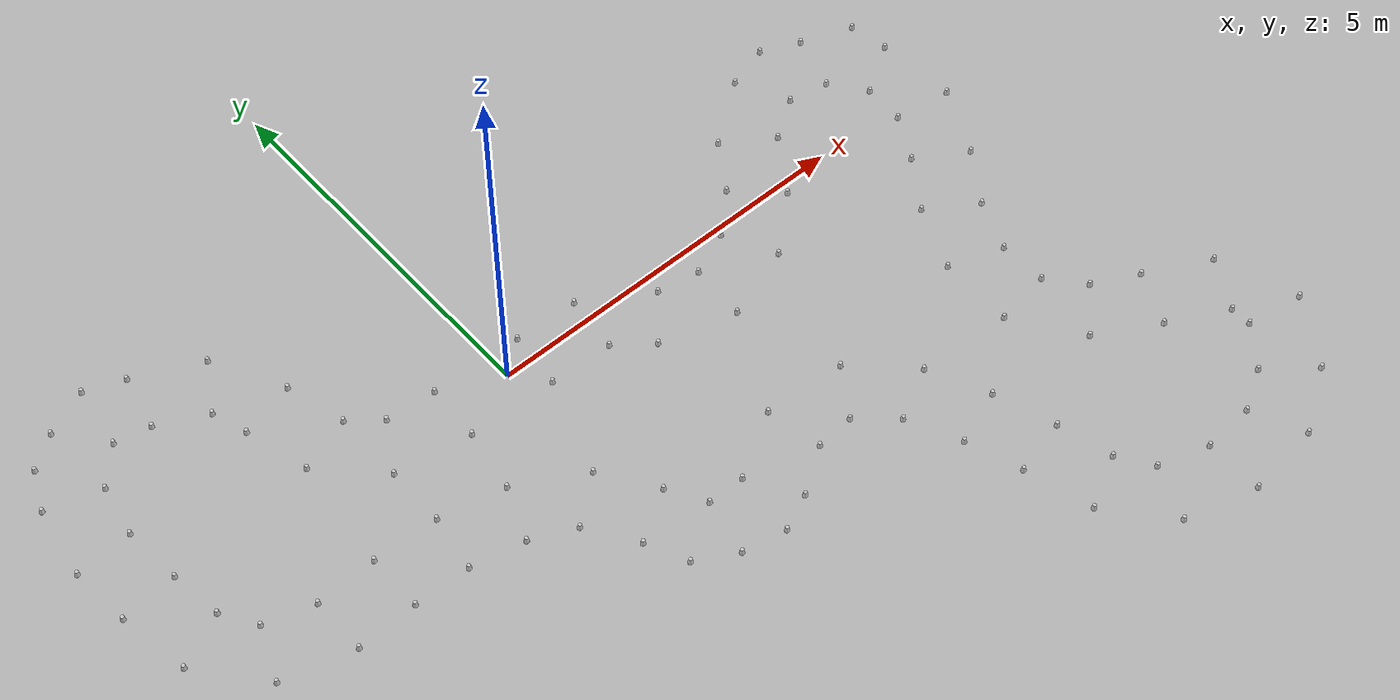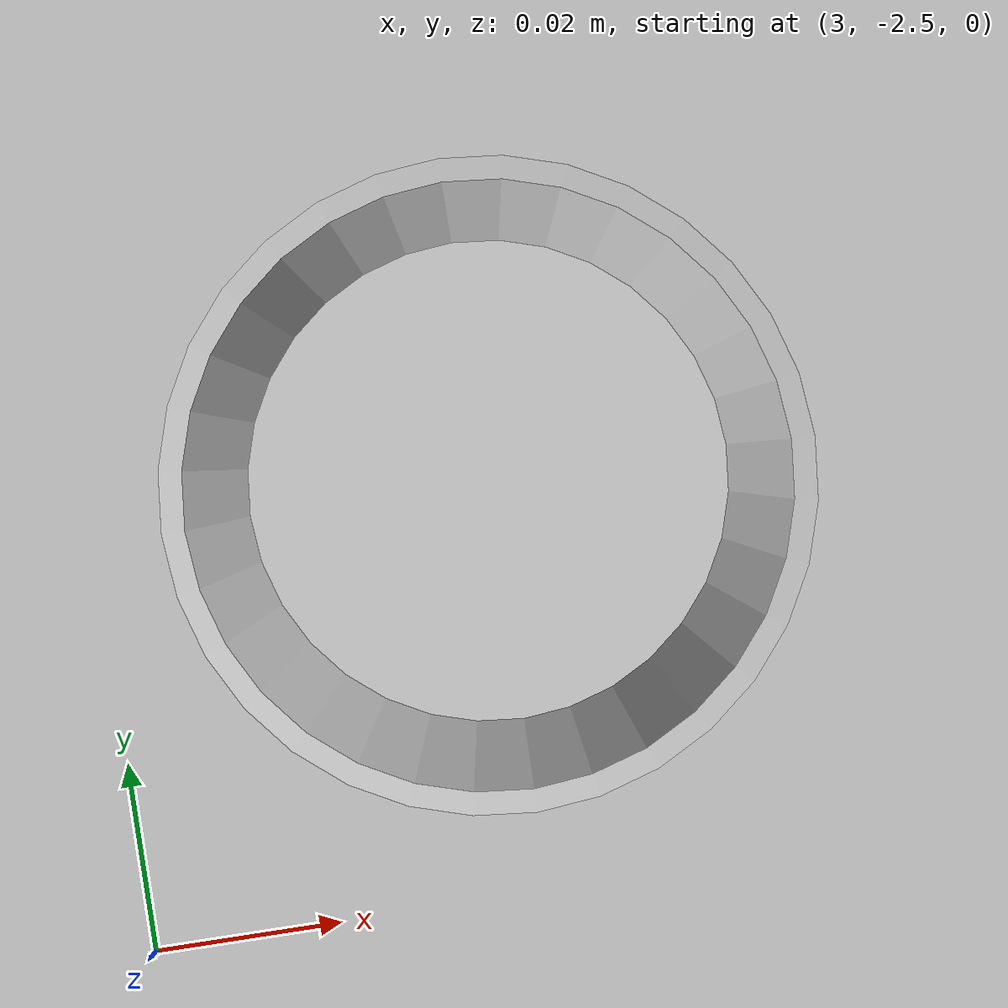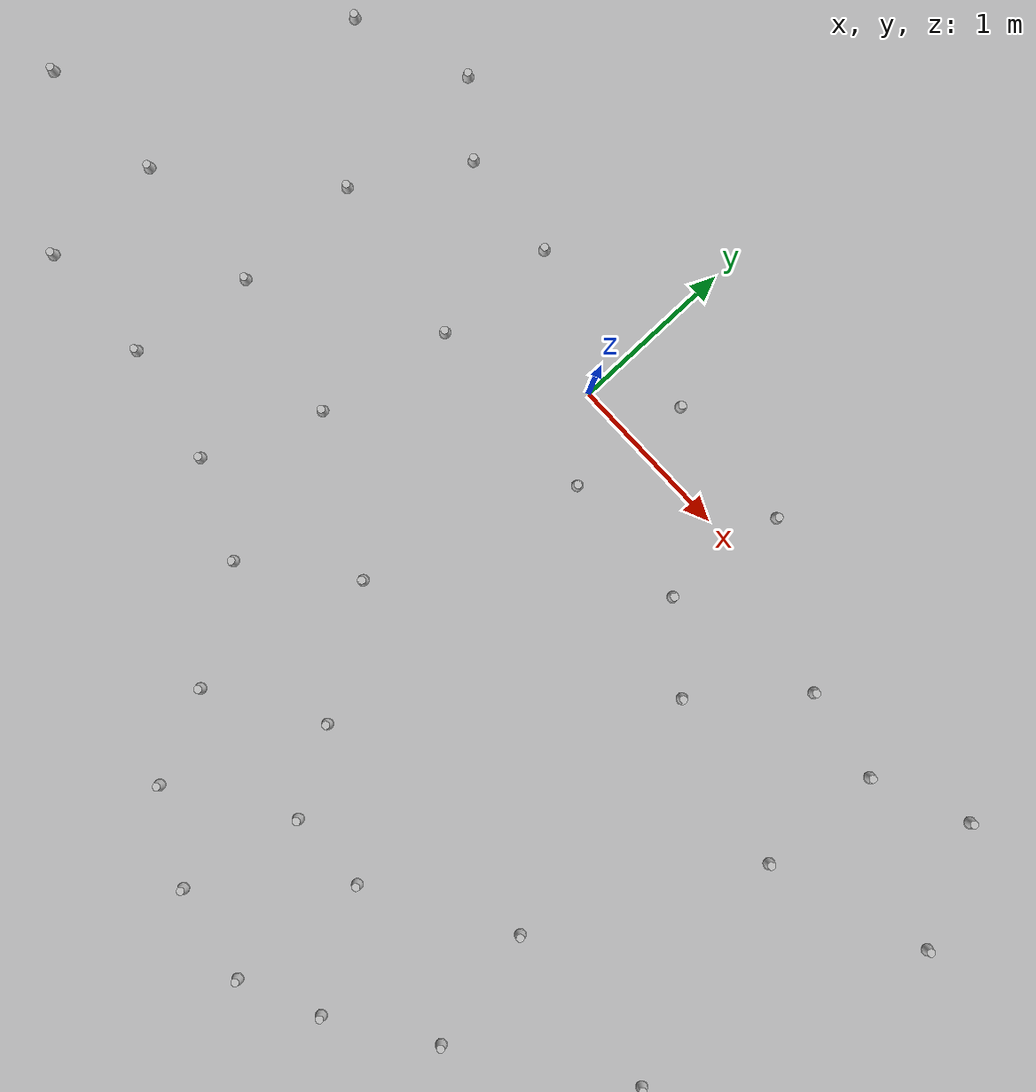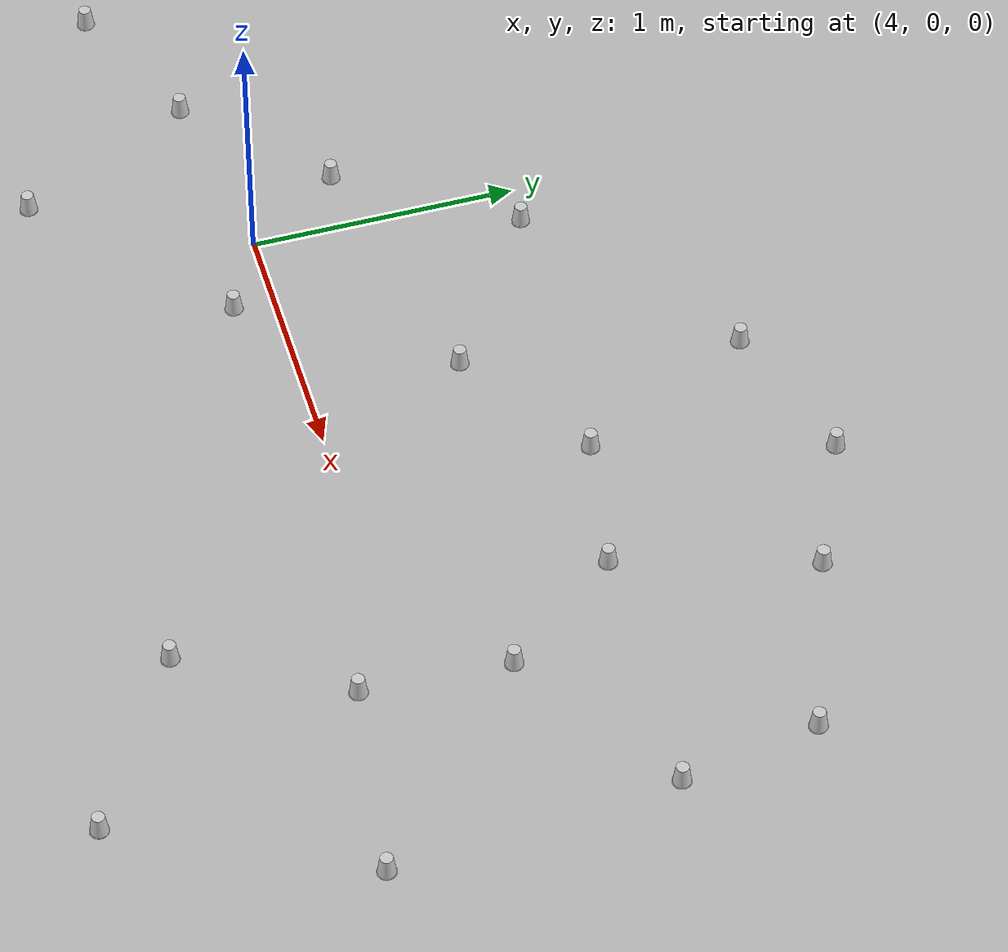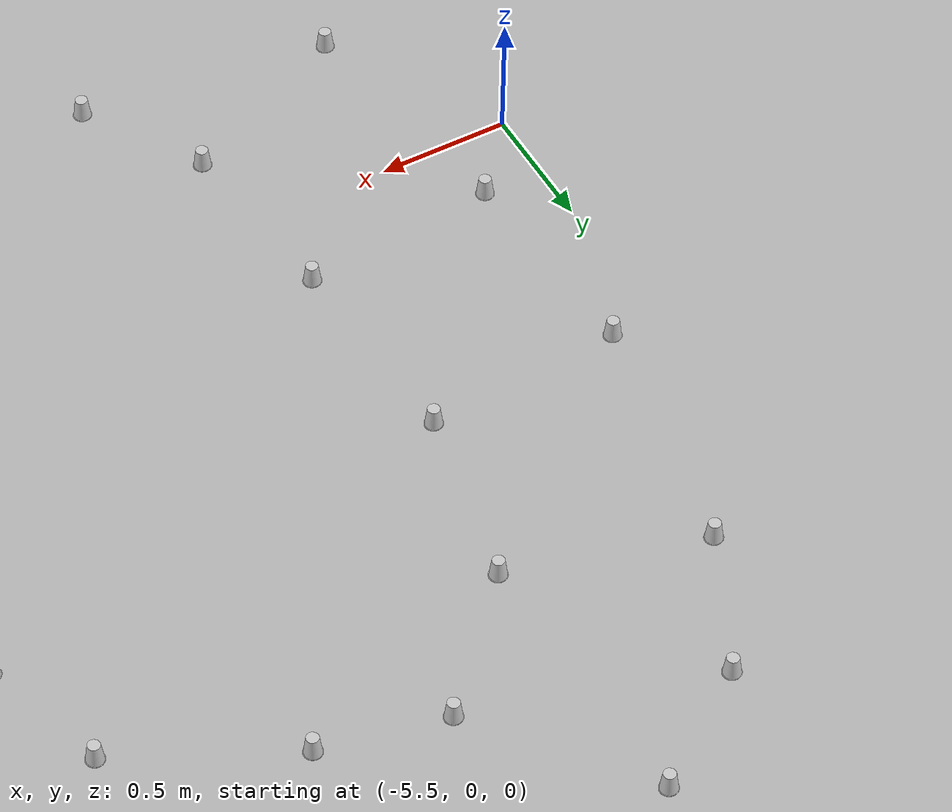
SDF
<?xml version='1.0' encoding='UTF-8'?>
<sdf version="1.4">
  <model name="some track">
    <include>
      <uri>model://cone_yellow</uri>
      <pose>0.3409676039409463 -0.41114177604470903 0 0 0 0</pose>
      <name>cone_right_0</name>
    </include>
    <include>
      <uri>model://cone_yellow</uri>
      <pose>1.1767115236807184 -0.4493838252367791 0 0 0 0</pose>
      <name>cone_right_1</name>
    </include>
    <include>
      <uri>model://cone_yellow</uri>
      <pose>1.631558370376822 -0.8078466989733224 0 0 0 0</pose>
      <name>cone_right_2</name>
    </include>
    <include>
      <uri>model://cone_yellow</uri>
      <pose>2.6372265462705076 -1.0855538326307848 0 0 0 0</pose>
      <name>cone_right_3</name>
    </include>
    <include>
      <uri>model://cone_yellow</uri>
      <pose>3.5890004089107594 -0.7654969534349234 0 0 0 0</pose>
      <name>cone_right_4</name>
    </include>
    <include>
      <uri>model://cone_yellow</uri>
      <pose>4.291666513173601 -0.15092693251580996 0 0 0 0</pose>
      <name>cone_right_5</name>
    </include>
    <include>
      <uri>model://cone_yellow</uri>
      <pose>4.782597564881496 0.5703919850985453 0 0 0 0</pose>
      <name>cone_right_6</name>
    </include>
    <include>
      <uri>model://cone_yellow</uri>
      <pose>5.2964412606022 0.9084802677498479 0 0 0 0</pose>
      <name>cone_right_7</name>
    </include>
    <include>
      <uri>model://cone_yellow</uri>
      <pose>5.819784138127884 0.8106051766948299 0 0 0 0</pose>
      <name>cone_right_8</name>
    </include>
    <include>
      <uri>model://cone_yellow</uri>
      <pose>6.156416733164633 0.3674896340894541 0 0 0 0</pose>
      <name>cone_right_9</name>
    </include>
    <include>
      <uri>model://cone_yellow</uri>
      <pose>6.128602146034341 -0.1783455778757544 0 0 0 0</pose>
      <name>cone_right_10</name>
    </include>
    <include>
      <uri>model://cone_yellow</uri>
      <pose>5.807316255386401 -0.7611340283406779 0 0 0 0</pose>
      <name>cone_right_11</name>
    </include>
    <include>
      <uri>model://cone_yellow</uri>
      <pose>5.3545018083821105 -1.4142515967132379 0 0 0 0</pose>
      <name>cone_right_12</name>
    </include>
    <include>
      <uri>model://cone_yellow</uri>
      <pose>4.998807136372666 -2.246408923662873 0 0 0 0</pose>
      <name>cone_right_13</name>
    </include>
    <include>
      <uri>model://cone_yellow</uri>
      <pose>4.983328583720128 -3.226833901873149 0 0 0 0</pose>
      <name>cone_right_14</name>
    </include>
    <include>
      <uri>model://cone_yellow</uri>
      <pose>5.565364480462757 -4.081125344238883 0 0 0 0</pose>
      <name>cone_right_15</name>
    </include>
    <include>
      <uri>model://cone_yellow</uri>
      <pose>6.363013064539919 -4.531742112849482 0 0 0 0</pose>
      <name>cone_right_16</name>
    </include>
    <include>
      <uri>model://cone_yellow</uri>
      <pose>7.123687108358626 -4.924042889566283 0 0 0 0</pose>
      <name>cone_right_17</name>
    </include>
    <include>
      <uri>model://cone_yellow</uri>
      <pose>7.127089540645765 -5.201016966559487 0 0 0 0</pose>
      <name>cone_right_18</name>
    </include>
    <include>
      <uri>model://cone_yellow</uri>
      <pose>6.712845519506844 -5.718142094779908 0 0 0 0</pose>
      <name>cone_right_19</name>
    </include>
    <include>
      <uri>model://cone_yellow</uri>
      <pose>6.190052301106951 -6.022459694572738 0 0 0 0</pose>
      <name>cone_right_20</name>
    </include>
    <include>
      <uri>model://cone_yellow</uri>
      <pose>5.506928528467959 -6.074965762808183 0 0 0 0</pose>
      <name>cone_right_21</name>
    </include>
    <include>
      <uri>model://cone_yellow</uri>
      <pose>4.847933917968942 -5.869512724893547 0 0 0 0</pose>
      <name>cone_right_22</name>
    </include>
    <include>
      <uri>model://cone_yellow</uri>
      <pose>4.559766804122246 -5.43816367083764 0 0 0 0</pose>
      <name>cone_right_23</name>
    </include>
    <include>
      <uri>model://cone_yellow</uri>
      <pose>4.376839194252488 -4.717066437962767 0 0 0 0</pose>
      <name>cone_right_24</name>
    </include>
    <include>
      <uri>model://cone_yellow</uri>
      <pose>4.112315207650622 -3.915404744489624 0 0 0 0</pose>
      <name>cone_right_25</name>
    </include>
    <include>
      <uri>model://cone_yellow</uri>
      <pose>3.7511028802787334 -3.138880577470492 0 0 0 0</pose>
      <name>cone_right_26</name>
    </include>
    <include>
      <uri>model://cone_yellow</uri>
      <pose>3.0422179326362246 -2.456496843170926 0 0 0 0</pose>
      <name>cone_right_27</name>
    </include>
    <include>
      <uri>model://cone_yellow</uri>
      <pose>1.9684291721027543 -2.3815171913766062 0 0 0 0</pose>
      <name>cone_right_28</name>
    </include>
    <include>
      <uri>model://cone_yellow</uri>
      <pose>1.138109261859287 -2.8628612971014142 0 0 0 0</pose>
      <name>cone_right_29</name>
    </include>
    <include>
      <uri>model://cone_yellow</uri>
      <pose>0.6426877544229853 -2.859744074155894 0 0 0 0</pose>
      <name>cone_right_30</name>
    </include>
    <include>
      <uri>model://cone_yellow</uri>
      <pose>0.3622621559774388 -2.3781096370189285 0 0 0 0</pose>
      <name>cone_right_31</name>
    </include>
    <include>
      <uri>model://cone_yellow</uri>
      <pose>-0.09859919944509482 -1.6765382276697358 0 0 0 0</pose>
      <name>cone_right_32</name>
    </include>
    <include>
      <uri>model://cone_yellow</uri>
      <pose>-0.9740155425092637 -1.1863236739954741 0 0 0 0</pose>
      <name>cone_right_33</name>
    </include>
    <include>
      <uri>model://cone_yellow</uri>
      <pose>-1.8416943104076664 -0.9936768916710199 0 0 0 0</pose>
      <name>cone_right_34</name>
    </include>
    <include>
      <uri>model://cone_yellow</uri>
      <pose>-2.7096669484907383 -0.9594147827962689 0 0 0 0</pose>
      <name>cone_right_35</name>
    </include>
    <include>
      <uri>model://cone_yellow</uri>
      <pose>-3.5176063277997347 -0.9838747267761377 0 0 0 0</pose>
      <name>cone_right_36</name>
    </include>
    <include>
      <uri>model://cone_yellow</uri>
      <pose>-4.164275383308855 -0.7891480094791462 0 0 0 0</pose>
      <name>cone_right_37</name>
    </include>
    <include>
      <uri>model://cone_yellow</uri>
      <pose>-4.437327596436047 -0.34918293176320836 0 0 0 0</pose>
      <name>cone_right_38</name>
    </include>
    <include>
      <uri>model://cone_yellow</uri>
      <pose>-4.5236431839745155 0.34330531409586007 0 0 0 0</pose>
      <name>cone_right_39</name>
    </include>
    <include>
      <uri>model://cone_yellow</uri>
      <pose>-4.581928101687658 1.131725442492832 0 0 0 0</pose>
      <name>cone_right_40</name>
    </include>
    <include>
      <uri>model://cone_yellow</uri>
      <pose>-4.450740080764928 1.8166034464207457 0 0 0 0</pose>
      <name>cone_right_41</name>
    </include>
    <include>
      <uri>model://cone_yellow</uri>
      <pose>-4.032388783141349 2.2585733122078775 0 0 0 0</pose>
      <name>cone_right_42</name>
    </include>
    <include>
      <uri>model://cone_yellow</uri>
      <pose>-3.5634308392080567 2.160134826423552 0 0 0 0</pose>
      <name>cone_right_43</name>
    </include>
    <include>
      <uri>model://cone_yellow</uri>
      <pose>-2.9290968601579093 1.8447543732769816 0 0 0 0</pose>
      <name>cone_right_44</name>
    </include>
    <include>
      <uri>model://cone_yellow</uri>
      <pose>-2.7802697330122794 1.3716809061619473 0 0 0 0</pose>
      <name>cone_right_45</name>
    </include>
    <include>
      <uri>model://cone_yellow</uri>
      <pose>-2.549744919399242 0.5183609190915324 0 0 0 0</pose>
      <name>cone_right_46</name>
    </include>
    <include>
      <uri>model://cone_yellow</uri>
      <pose>-1.8383581669922804 -0.1973515777724095 0 0 0 0</pose>
      <name>cone_right_47</name>
    </include>
    <include>
      <uri>model://cone_yellow</uri>
      <pose>-0.8275922924715238 -0.3617218564837755 0 0 0 0</pose>
      <name>cone_right_48</name>
    </include>
    <include>
      <uri>model://cone_blue</uri>
      <pose>0.41593649124304044 0.3351019280739159 0 0 0 0</pose>
      <name>cone_left_0</name>
    </include>
    <include>
      <uri>model://cone_blue</uri>
      <pose>1.256156982572238 0.2963965841744066 0 0 0 0</pose>
      <name>cone_left_1</name>
    </include>
    <include>
      <uri>model://cone_blue</uri>
      <pose>2.1186169404269917 -0.2375187675683419 0 0 0 0</pose>
      <name>cone_left_2</name>
    </include>
    <include>
      <uri>model://cone_blue</uri>
      <pose>2.6789773997544297 -0.33671682350706095 0 0 0 0</pose>
      <name>cone_left_3</name>
    </include>
    <include>
      <uri>model://cone_blue</uri>
      <pose>3.2470006015269424 -0.09801202345565274 0 0 0 0</pose>
      <name>cone_left_4</name>
    </include>
    <include>
      <uri>model://cone_blue</uri>
      <pose>3.7467027892653206 0.36435409723787665 0 0 0 0</pose>
      <name>cone_left_5</name>
    </include>
    <include>
      <uri>model://cone_blue</uri>
      <pose>4.1593766527398275 0.9876397468292775 0 0 0 0</pose>
      <name>cone_left_6</name>
    </include>
    <include>
      <uri>model://cone_blue</uri>
      <pose>4.965147407737233 1.5813430940776856 0 0 0 0</pose>
      <name>cone_left_7</name>
    </include>
    <include>
      <uri>model://cone_blue</uri>
      <pose>6.035868831930823 1.5288025068932163 0 0 0 0</pose>
      <name>cone_left_8</name>
    </include>
    <include>
      <uri>model://cone_blue</uri>
      <pose>6.7910597714151315 0.767149757194295 0 0 0 0</pose>
      <name>cone_left_9</name>
    </include>
    <include>
      <uri>model://cone_blue</uri>
      <pose>6.8710954439780405 -0.28419312158220694 0 0 0 0</pose>
      <name>cone_left_10</name>
    </include>
    <include>
      <uri>model://cone_blue</uri>
      <pose>6.443207250810084 -1.1588055535207915 0 0 0 0</pose>
      <name>cone_left_11</name>
    </include>
    <include>
      <uri>model://cone_blue</uri>
      <pose>5.9803506414761625 -1.8275471787302886 0 0 0 0</pose>
      <name>cone_left_12</name>
    </include>
    <include>
      <uri>model://cone_blue</uri>
      <pose>5.708586276370304 -2.4887177605306485 0 0 0 0</pose>
      <name>cone_left_13</name>
    </include>
    <include>
      <uri>model://cone_blue</uri>
      <pose>5.724570676733098 -3.1125528468125956 0 0 0 0</pose>
      <name>cone_left_14</name>
    </include>
    <include>
      <uri>model://cone_blue</uri>
      <pose>6.101516658672767 -3.556681980470534 0 0 0 0</pose>
      <name>cone_left_15</name>
    </include>
    <include>
      <uri>model://cone_blue</uri>
      <pose>6.677127039214513 -3.850689683946884 0 0 0 0</pose>
      <name>cone_left_16</name>
    </include>
    <include>
      <uri>model://cone_blue</uri>
      <pose>7.500672435245954 -4.2756741184863865 0 0 0 0</pose>
      <name>cone_left_17</name>
    </include>
    <include>
      <uri>model://cone_blue</uri>
      <pose>7.866751445593914 -5.325114776243926 0 0 0 0</pose>
      <name>cone_left_18</name>
    </include>
    <include>
      <uri>model://cone_blue</uri>
      <pose>7.297350968590251 -6.18809249640949 0 0 0 0</pose>
      <name>cone_left_19</name>
    </include>
    <include>
      <uri>model://cone_blue</uri>
      <pose>6.500061481835711 -6.705390370310681 0 0 0 0</pose>
      <name>cone_left_20</name>
    </include>
    <include>
      <uri>model://cone_blue</uri>
      <pose>5.513466210708113 -6.824937268074167 0 0 0 0</pose>
      <name>cone_left_21</name>
    </include>
    <include>
      <uri>model://cone_blue</uri>
      <pose>4.557449393837925 -6.560974033457069 0 0 0 0</pose>
      <name>cone_left_22</name>
    </include>
    <include>
      <uri>model://cone_blue</uri>
      <pose>3.8953524721260173 -5.786091242952879 0 0 0 0</pose>
      <name>cone_left_23</name>
    </include>
    <include>
      <uri>model://cone_blue</uri>
      <pose>3.648961254425705 -4.897880443818279 0 0 0 0</pose>
      <name>cone_left_24</name>
    </include>
    <include>
      <uri>model://cone_blue</uri>
      <pose>3.4069293301627557 -4.170219900712078 0 0 0 0</pose>
      <name>cone_left_25</name>
    </include>
    <include>
      <uri>model://cone_blue</uri>
      <pose>3.0848871914381513 -3.48334633185352 0 0 0 0</pose>
      <name>cone_left_26</name>
    </include>
    <include>
      <uri>model://cone_blue</uri>
      <pose>2.6202733765267348 -3.076547479465709 0 0 0 0</pose>
      <name>cone_left_27</name>
    </include>
    <include>
      <uri>model://cone_blue</uri>
      <pose>2.1087111644897445 -3.11828103591021 0 0 0 0</pose>
      <name>cone_left_28</name>
    </include>
    <include>
      <uri>model://cone_blue</uri>
      <pose>1.5327140378165052 -3.5006599101382836 0 0 0 0</pose>
      <name>cone_left_29</name>
    </include>
    <include>
      <uri>model://cone_blue</uri>
      <pose>0.4855383668600083 -3.59309533377749 0 0 0 0</pose>
      <name>cone_left_30</name>
    </include>
    <include>
      <uri>model://cone_blue</uri>
      <pose>-0.27772886885204695 -2.769148622463736 0 0 0 0</pose>
      <name>cone_left_31</name>
    </include>
    <include>
      <uri>model://cone_blue</uri>
      <pose>-0.6853825598337395 -2.1436413083393133 0 0 0 0</pose>
      <name>cone_left_32</name>
    </include>
    <include>
      <uri>model://cone_blue</uri>
      <pose>-1.2527562412490743 -1.882602083014483 0 0 0 0</pose>
      <name>cone_left_33</name>
    </include>
    <include>
      <uri>model://cone_blue</uri>
      <pose>-1.9630558015199229 -1.733792685635052 0 0 0 0</pose>
      <name>cone_left_34</name>
    </include>
    <include>
      <uri>model://cone_blue</uri>
      <pose>-2.708670783284202 -1.7094141212325646 0 0 0 0</pose>
      <name>cone_left_35</name>
    </include>
    <include>
      <uri>model://cone_blue</uri>
      <pose>-3.51179394031017 -1.7338522038723978 0 0 0 0</pose>
      <name>cone_left_36</name>
    </include>
    <include>
      <uri>model://cone_blue</uri>
      <pose>-4.451762497658489 -1.4818609074988962 0 0 0 0</pose>
      <name>cone_left_37</name>
    </include>
    <include>
      <uri>model://cone_blue</uri>
      <pose>-5.115017114382134 -0.6704879539243963 0 0 0 0</pose>
      <name>cone_left_38</name>
    </include>
    <include>
      <uri>model://cone_blue</uri>
      <pose>-5.270231847217525 0.27185345675810757 0 0 0 0</pose>
      <name>cone_left_39</name>
    </include>
    <include>
      <uri>model://cone_blue</uri>
      <pose>-5.330272383529446 1.0819174528255373 0 0 0 0</pose>
      <name>cone_left_40</name>
    </include>
    <include>
      <uri>model://cone_blue</uri>
      <pose>-5.169874136054475 2.0295499432757316 0 0 0 0</pose>
      <name>cone_left_41</name>
    </include>
    <include>
      <uri>model://cone_blue</uri>
      <pose>-4.505142680909613 2.8408135994990555 0 0 0 0</pose>
      <name>cone_left_42</name>
    </include>
    <include>
      <uri>model://cone_blue</uri>
      <pose>-3.40509949144364 2.8932318079444856 0 0 0 0</pose>
      <name>cone_left_43</name>
    </include>
    <include>
      <uri>model://cone_blue</uri>
      <pose>-2.536557158794794 2.4838260303341197 0 0 0 0</pose>
      <name>cone_left_44</name>
    </include>
    <include>
      <uri>model://cone_blue</uri>
      <pose>-2.0542571300669645 1.5598449313223606 0 0 0 0</pose>
      <name>cone_left_45</name>
    </include>
    <include>
      <uri>model://cone_blue</uri>
      <pose>-1.840942491927121 0.7635121353023204 0 0 0 0</pose>
      <name>cone_left_46</name>
    </include>
    <include>
      <uri>model://cone_blue</uri>
      <pose>-1.4525928548385854 0.4458320071696832 0 0 0 0</pose>
      <name>cone_left_47</name>
    </include>
    <include>
      <uri>model://cone_blue</uri>
      <pose>-0.7883422953000319 0.3872503978234438 0 0 0 0</pose>
      <name>cone_left_48</name>
    </include>
    <include>
      <uri>model://cone_blue</uri>
      <pose>5.53839404859999 1.7511557254753285 0 0 0 0</pose>
      <name>cone_left_49</name>
    </include>
    <include>
      <uri>model://cone_blue</uri>
      <pose>6.701234245406887 1.2827895350947784 0 0 0 0</pose>
      <name>cone_left_50</name>
    </include>
    <include>
      <uri>model://cone_blue</uri>
      <pose>-4.927167722662013 2.5425330816355824 0 0 0 0</pose>
      <name>cone_left_51</name>
    </include>
    <include>
      <uri>model://cone_blue</uri>
      <pose>-3.909682550455976 3.091652063461055 0 0 0 0</pose>
      <name>cone_left_52</name>
    </include>
    <include>
      <uri>model://cone_blue</uri>
      <pose>-0.03354856109969262 -3.3039690189768365 0 0 0 0</pose>
      <name>cone_left_53</name>
    </include>
    <include>
      <uri>model://cone_blue</uri>
      <pose>1.0646894025512594 -3.7077329762014486 0 0 0 0</pose>
      <name>cone_left_54</name>
    </include>
  </model>
</sdf>

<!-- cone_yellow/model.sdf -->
<sdf version='1.4'>
  <model name="cone_yellow">
    <link name="link">
    <collision name="collision"><geometry><box><size> 0.05 0.05 0.01</size>
             </box></geometry></collision>
      <visual name="visual">
        <geometry>
          <mesh>
            <uri>model://cup.dae</uri>
            <scale>1 1 1</scale>
          </mesh>
        </geometry>
        <material>
            <script>
              <uri>model://cone_yellow/materials/scripts</uri>
              <uri>model://cone_yellow/materials/textures</uri>
              <name>cone_yellow/Image</name>
            </script>
        </material>
      </visual>
    </link>
  </model>
</sdf>

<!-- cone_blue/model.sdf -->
<sdf version='1.4'>
  <model name="cone_blue">
    <link name="link">
    <collision name="collision"><geometry><box><size> 0.05 0.05 0.01</size>
             </box></geometry></collision>
      <visual name="visual">
        <geometry>
          <mesh>
            <uri>model://cup.dae</uri>
            <scale>1 1 1</scale>
          </mesh>
        </geometry>
        <material>
            <script>
              <uri>model://cone_blue/materials/scripts</uri>
              <uri>model://cone_blue/materials/textures</uri>
              <name>cone_blue/Image</name>
            </script>
        </material>
      </visual>
    </link>
  </model>
</sdf>
